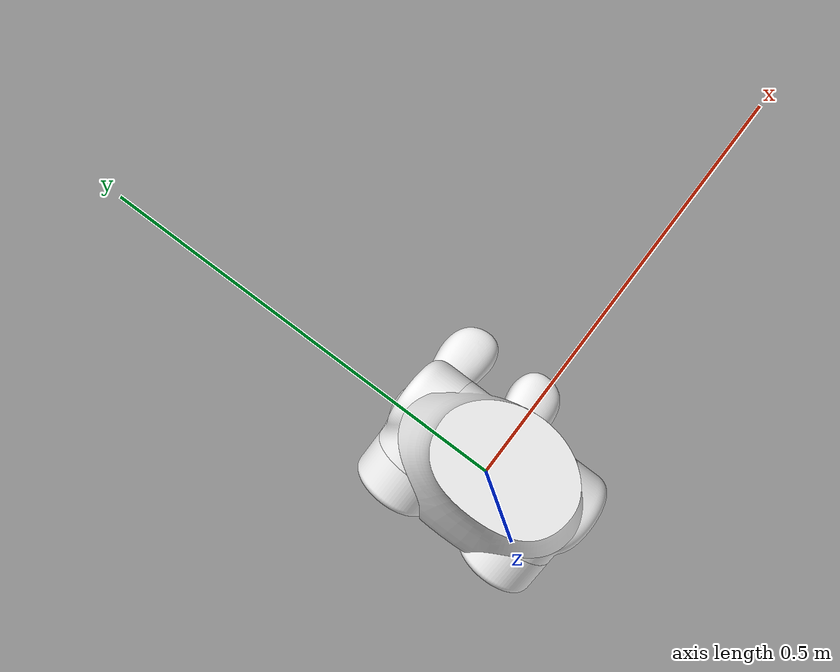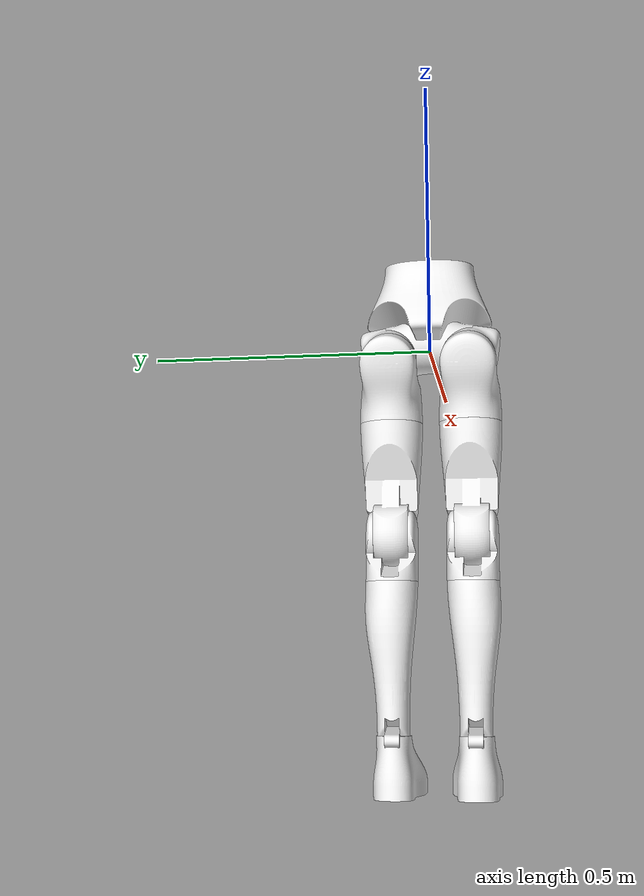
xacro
<?xml version="1.0"?>
<!-- GENERATED by robot_assets from Onshape CAD. Do not edit by hand. Regenerate: robot-assets-generate lite_biped -->
<robot xmlns:xacro="http://www.ros.org/wiki/xacro" name="lite_biped">
  <xacro:arg name="use_fake_hardware" default="true"/>
  <xacro:arg name="use_sim" default="false"/>
  <xacro:arg name="mode" default="legs"/>
  <xacro:arg name="can_interface_left" default="can2"/>
  <xacro:arg name="can_interface_right" default="can3"/>
  <xacro:arg name="calibration_file" default=""/>
  <xacro:arg name="imu_port" default="/dev/ttyUSB0"/>

  <xacro:include filename="$(find lite_description)/robots/lite_biped/xacro/lite_biped.description.xacro"/>
  <xacro:include filename="$(find lite_description)/robots/lite_biped/xacro/lite_biped.ros2_control.xacro"/>

  <xacro:lite_biped_description/>

  <xacro:lite_biped_ros2_control
    name="LiteBipedHardware"
    use_fake_hardware="$(arg use_fake_hardware)"
    use_sim="$(arg use_sim)"
    mode="$(arg mode)"
    can_interface_left="$(arg can_interface_left)"
    can_interface_right="$(arg can_interface_right)"
    calibration_file="$(arg calibration_file)"
    imu_port="$(arg imu_port)"/>
</robot>

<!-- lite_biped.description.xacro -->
<!-- GENERATED by robot_assets from Onshape CAD. Do not edit by hand. Regenerate: robot-assets-generate lite_biped -->
<robot xmlns:xacro="http://www.ros.org/wiki/xacro">
  <xacro:macro name="lite_biped_description" params="mesh_root:=package://lite_description/robots/lite_biped/meshes/visual">
    <link name="base_link" />
    <joint name="base_link_to_pelvis" type="fixed">
      <parent link="base_link" />
      <child link="pelvis" />
      <origin xyz="0 0 0" rpy="0 0 0" />
    </joint>
    <!-- GENERATED by robot_assets from Onshape CAD. Do not edit by hand. Regenerate: robot-assets-generate lite_biped -->
    <link name="pelvis">
      <inertial>
        <origin xyz="0.0137049 6.97587e-07 0.0692011" rpy="0 0 0" />
        <mass value="2.1" />
        <inertia ixx="0.00987937" ixy="3.9803e-08" ixz="-0.000115563" iyy="0.00823366" iyz="-5.1965e-08" izz="0.00638151" />
      </inertial>
      <!-- Part pelvis_parts -->
      <visual>
        <origin xyz="0.0137049 6.97587e-07 0.0692011" rpy="0 -0 0" />
        <geometry>
          <mesh filename="${mesh_root}/pelvis_visual.stl" />
        </geometry>
        <material name="pelvis_parts_material">
          <color rgba="0.933333 0.933333 0.933333 1" />
        </material>
      </visual>
    </link>
    <!-- Frame imu (dummy link + fixed joint) -->
    <link name="imu">
      <origin xyz="0 0 0" rpy="0 -0 0" />
      <inertial>
        <origin xyz="0 0 0" rpy="0 0 0" />
        <mass value="1e-9" />
        <inertia ixx="0" ixy="0" ixz="0" iyy="0" iyz="0" izz="0" />
      </inertial>
    </link>
    <joint name="imu_frame" type="fixed">
      <origin xyz="0 0 0.08" rpy="0 -0 0" />
      <parent link="pelvis" />
      <child link="imu" />
      <axis xyz="0 0 0" />
    </joint>
    <!-- Link left_hip_pitch -->
    <link name="left_hip_pitch">
      <inertial>
        <origin xyz="-0.0114774 0.00418673 0.0187959" rpy="0 0 0" />
        <mass value="0.18" />
        <inertia ixx="0.000189549" ixy="1.56103e-05" ixz="-3.45388e-05" iyy="0.000226363" iyz="1.30141e-05" izz="0.000286537" />
      </inertial>
      <!-- Part left_hip_pitch_parts -->
      <visual>
        <origin xyz="-0.0114774 0.00418673 0.0187959" rpy="1.74533 0 -0" />
        <geometry>
          <mesh filename="${mesh_root}/left_hip_pitch_visual.stl" />
        </geometry>
        <material name="left_hip_pitch_parts_material">
          <color rgba="0.933333 0.933333 0.933333 1" />
        </material>
      </visual>
    </link>
    <!-- Link left_hip_roll -->
    <link name="left_hip_roll">
      <inertial>
        <origin xyz="-4.8952e-08 0.0525082 -0.0652484" rpy="0 0 0" />
        <mass value="0.93" />
        <inertia ixx="0.00263146" ixy="-5.134e-09" ixz="3.451e-09" iyy="0.00142387" iyz="-0.000651416" izz="0.00255491" />
      </inertial>
      <!-- Part left_hip_roll_parts -->
      <collision>
        <origin xyz="0 0.181098 -0.0871979" rpy="1.22173 -0 0" />
        <geometry>
          <cylinder length="0.15" radius="0.05" />
        </geometry>
      </collision>
      <visual>
        <origin xyz="-4.8952e-08 0.0525082 -0.0652484" rpy="0 -1.22173 1.5708" />
        <geometry>
          <mesh filename="${mesh_root}/left_hip_roll_visual.stl" />
        </geometry>
        <material name="left_hip_roll_parts_material">
          <color rgba="0.933333 0.933333 0.933333 1" />
        </material>
      </visual>
    </link>
    <!-- Link left_hip_yaw -->
    <link name="left_hip_yaw">
      <inertial>
        <origin xyz="0.00130442 -2.2783e-05 -0.237299" rpy="0 0 0" />
        <mass value="1.54" />
        <inertia ixx="0.00856423" ixy="8.05553e-07" ixz="-0.000337563" iyy="0.00874707" iyz="1.62929e-07" izz="0.00192866" />
      </inertial>
      <!-- Part left_hip_yaw_parts -->
      <visual>
        <origin xyz="0.00130442 -2.2783e-05 -0.237299" rpy="-0 0 -0" />
        <geometry>
          <mesh filename="${mesh_root}/left_hip_yaw_visual.stl" />
        </geometry>
        <material name="left_hip_yaw_parts_material">
          <color rgba="0.933333 0.933333 0.933333 1" />
        </material>
      </visual>
    </link>
    <!-- Link left_knee_pitch -->
    <link name="left_knee_pitch">
      <inertial>
        <origin xyz="-0.00486713 0.0372163 -0.000224083" rpy="0 0 0" />
        <mass value="0.23" />
        <inertia ixx="0.00048246" ixy="3.51526e-05" ixz="-1.20098e-07" iyy="0.000330466" iyz="5.6617e-07" izz="0.00037756" />
      </inertial>
      <!-- Part left_knee_pitch_parts -->
      <collision>
        <origin xyz="-0.015 0.19 0" rpy="1.5708 1.5708 0" />
        <geometry>
          <cylinder length="0.12" radius="0.045" />
        </geometry>
      </collision>
      <visual>
        <origin xyz="-0.00486713 0.0372163 -0.000224083" rpy="1.5708 0 0" />
        <geometry>
          <mesh filename="${mesh_root}/left_knee_pitch_visual.stl" />
        </geometry>
        <material name="left_knee_pitch_parts_material">
          <color rgba="0.933333 0.933333 0.933333 1" />
        </material>
      </visual>
    </link>
    <!-- Link left_ankle_yaw -->
    <link name="left_ankle_yaw">
      <inertial>
        <origin xyz="-0.00304992 0.00150525 -0.18535" rpy="0 0 0" />
        <mass value="1.03" />
        <inertia ixx="0.00548966" ixy="2.18778e-06" ixz="0.000114943" iyy="0.00552969" iyz="-1.87643e-05" izz="0.000829513" />
      </inertial>
      <!-- Part left_ankle_yaw_parts -->
      <visual>
        <origin xyz="-0.00304992 0.00150525 -0.18535" rpy="-0 0 -0" />
        <geometry>
          <mesh filename="${mesh_root}/left_ankle_yaw_visual.stl" />
        </geometry>
        <material name="left_ankle_yaw_parts_material">
          <color rgba="0.933333 0.933333 0.933333 1" />
        </material>
      </visual>
    </link>
    <!-- Link left_ankle_pitch -->
    <link name="left_ankle_pitch">
      <inertial>
        <origin xyz="-0.00384209 0.0297371 3.1356e-08" rpy="0 0 0" />
        <mass value="0.34" />
        <inertia ixx="0.000180143" ixy="-3.10163e-05" ixz="-7.8e-11" iyy="0.00014325" iyz="2.66e-10" izz="0.000245142" />
      </inertial>
      <!-- Part left_ankle_pitch_parts -->
      <visual>
        <origin xyz="-0.00384209 0.0297371 3.1356e-08" rpy="1.5708 -0 -0" />
        <geometry>
          <mesh filename="${mesh_root}/left_ankle_pitch_visual.stl" />
        </geometry>
        <material name="left_ankle_pitch_parts_material">
          <color rgba="0.933333 0.933333 0.933333 1" />
        </material>
      </visual>
    </link>
    <!-- Link left_foot -->
    <link name="left_foot">
      <inertial>
        <origin xyz="0.00124938 0.0227876 0.0398042" rpy="0 0 0" />
        <mass value="0.44" />
        <inertia ixx="0.00133847" ixy="-3.31857e-06" ixz="-4.29633e-05" iyy="0.00119465" iyz="-0.000154848" izz="0.000481763" />
      </inertial>
      <!-- Part left_foot_parts -->
      <collision>
        <origin xyz="0 0.05 0.015" rpy="1.5708 0 0" />
        <geometry>
          <box size="0.065 0.12 0.03" />
        </geometry>
      </collision>
      <collision>
        <origin xyz="0 0.04 0.11" rpy="1.91986 0 0" />
        <geometry>
          <box size="0.07 0.05 0.03" />
        </geometry>
      </collision>
      <visual>
        <origin xyz="0.00124938 0.0227876 0.0398042" rpy="1.5708 -1.5708 0" />
        <geometry>
          <mesh filename="${mesh_root}/left_foot_visual.stl" />
        </geometry>
        <material name="left_foot_parts_material">
          <color rgba="0.933333 0.933333 0.933333 1" />
        </material>
      </visual>
    </link>
    <!-- Joint from left_ankle_pitch to left_foot -->
    <joint name="left_ankle_roll" type="revolute">
      <origin xyz="-0 0.04 0" rpy="0 1.5708 0" />
      <parent link="left_ankle_pitch" />
      <child link="left_foot" />
      <axis xyz="0 0 1" />
      <limit effort="5.5" velocity="100" lower="-0.349066" upper="0.349066" />
      <joint_properties friction="0.1" />
    </joint>
    <!-- Joint from left_ankle_yaw to left_ankle_pitch -->
    <joint name="left_ankle_pitch" type="revolute">
      <origin xyz="0.01 -0 -0.34" rpy="-1.5708 0 -0" />
      <parent link="left_ankle_yaw" />
      <child link="left_ankle_pitch" />
      <axis xyz="0 0 1" />
      <limit effort="14.0" velocity="100" lower="-0.523599" upper="0.872665" />
      <joint_properties friction="0.1" />
    </joint>
    <!-- Joint from left_knee_pitch to left_ankle_yaw -->
    <joint name="left_ankle_yaw" type="revolute">
      <origin xyz="-0.015 0 0" rpy="1.5708 0 -0" />
      <parent link="left_knee_pitch" />
      <child link="left_ankle_yaw" />
      <axis xyz="0 0 1" />
      <limit effort="14.0" velocity="100" lower="-1.5708" upper="1.5708" />
      <joint_properties friction="0.1" />
    </joint>
    <!-- Joint from left_hip_yaw to left_knee_pitch -->
    <joint name="left_knee_pitch" type="revolute">
      <origin xyz="-0.01 0 -0.33" rpy="-1.5708 0 0" />
      <parent link="left_hip_yaw" />
      <child link="left_knee_pitch" />
      <axis xyz="0 0 1" />
      <limit effort="36.0" velocity="100" lower="0" upper="2.35619" />
      <joint_properties friction="0.1" />
    </joint>
    <!-- Joint from left_hip_roll to left_hip_yaw -->
    <joint name="left_hip_yaw" type="revolute">
      <origin xyz="0 -0.0068404 -0.0187939" rpy="0 -1.22173 1.5708" />
      <parent link="left_hip_roll" />
      <child link="left_hip_yaw" />
      <axis xyz="0 0 1" />
      <limit effort="17.0" velocity="100" lower="-1.5708" upper="1.5708" />
      <joint_properties friction="0.1" />
    </joint>
    <!-- Joint from left_hip_pitch to left_hip_roll -->
    <joint name="left_hip_roll" type="revolute">
      <origin xyz="-0 0 -0" rpy="1.91986 1.39626 1.5708" />
      <parent link="left_hip_pitch" />
      <child link="left_hip_roll" />
      <axis xyz="0 0 1" />
      <limit effort="36.0" velocity="100" lower="-0.349066" upper="1.5708" />
      <joint_properties friction="0.1" />
    </joint>
    <!-- Joint from pelvis to left_hip_pitch -->
    <joint name="left_hip_pitch" type="revolute">
      <origin xyz="0.02 0.07 0" rpy="-1.74533 0 0" />
      <parent link="pelvis" />
      <child link="left_hip_pitch" />
      <axis xyz="0 0 1" />
      <limit effort="36.0" velocity="100" lower="-2.35619" upper="0.785398" />
      <joint_properties friction="0.1" />
    </joint>
    <!-- Link right_hip_pitch -->
    <link name="right_hip_pitch">
      <inertial>
        <origin xyz="-0.0114771 0.00418737 -0.0187964" rpy="0 0 0" />
        <mass value="0.18" />
        <inertia ixx="0.000189546" ixy="1.56176e-05" ixz="3.45408e-05" iyy="0.00022637" iyz="-1.30122e-05" izz="0.000286535" />
      </inertial>
      <!-- Part right_hip_pitch_parts -->
      <visual>
        <origin xyz="-0.0114771 0.00418737 -0.0187964" rpy="1.39626 0 -0" />
        <geometry>
          <mesh filename="${mesh_root}/right_hip_pitch_visual.stl" />
        </geometry>
        <material name="right_hip_pitch_parts_material">
          <color rgba="0.933333 0.933333 0.933333 1" />
        </material>
      </visual>
    </link>
    <!-- Link right_hip_roll -->
    <link name="right_hip_roll">
      <inertial>
        <origin xyz="-1.13349e-07 0.0525083 -0.0652488" rpy="0 0 0" />
        <mass value="0.93" />
        <inertia ixx="0.00263147" ixy="2.71e-10" ixz="6.079e-09" iyy="0.00142387" iyz="-0.000651423" izz="0.00255493" />
      </inertial>
      <!-- Part right_hip_roll_parts -->
      <collision>
        <origin xyz="-0 0.181098 -0.0871979" rpy="1.22173 0 0" />
        <geometry>
          <cylinder length="0.15" radius="0.05" />
        </geometry>
      </collision>
      <visual>
        <origin xyz="-1.13349e-07 0.0525083 -0.0652488" rpy="0 -1.22173 1.5708" />
        <geometry>
          <mesh filename="${mesh_root}/right_hip_roll_visual.stl" />
        </geometry>
        <material name="right_hip_roll_parts_material">
          <color rgba="0.933333 0.933333 0.933333 1" />
        </material>
      </visual>
    </link>
    <!-- Link right_hip_yaw -->
    <link name="right_hip_yaw">
      <inertial>
        <origin xyz="0.00130421 2.35733e-05 -0.237299" rpy="0 0 0" />
        <mass value="1.54" />
        <inertia ixx="0.00856421" ixy="-7.98006e-07" ixz="-0.000337552" iyy="0.00874705" iyz="-2.23692e-07" izz="0.00192867" />
      </inertial>
      <!-- Part right_hip_yaw_parts -->
      <visual>
        <origin xyz="0.00130421 2.35733e-05 -0.237299" rpy="0 0 0" />
        <geometry>
          <mesh filename="${mesh_root}/right_hip_yaw_visual.stl" />
        </geometry>
        <material name="right_hip_yaw_parts_material">
          <color rgba="0.933333 0.933333 0.933333 1" />
        </material>
      </visual>
    </link>
    <!-- Link right_knee_pitch -->
    <link name="right_knee_pitch">
      <inertial>
        <origin xyz="-0.0048642 0.0372186 0.000224747" rpy="0 0 0" />
        <mass value="0.23" />
        <inertia ixx="0.000482479" ixy="3.5171e-05" ixz="1.13103e-07" iyy="0.000330463" iyz="-5.54061e-07" izz="0.000377561" />
      </inertial>
      <!-- Part right_knee_pitch_parts -->
      <collision>
        <origin xyz="-0.015 0.19 0" rpy="1.5708 1.5708 0" />
        <geometry>
          <cylinder length="0.12" radius="0.045" />
        </geometry>
      </collision>
      <visual>
        <origin xyz="-0.0048642 0.0372186 0.000224747" rpy="1.5708 -0 0" />
        <geometry>
          <mesh filename="${mesh_root}/right_knee_pitch_visual.stl" />
        </geometry>
        <material name="right_knee_pitch_parts_material">
          <color rgba="0.933333 0.933333 0.933333 1" />
        </material>
      </visual>
    </link>
    <!-- Link right_ankle_yaw -->
    <link name="right_ankle_yaw">
      <inertial>
        <origin xyz="-0.00304908 -0.0015054 -0.185348" rpy="0 0 0" />
        <mass value="1.03" />
        <inertia ixx="0.00548969" ixy="-2.19478e-06" ixz="0.000114953" iyy="0.00552968" iyz="1.87697e-05" izz="0.00082951" />
      </inertial>
      <!-- Part right_ankle_yaw_parts -->
      <visual>
        <origin xyz="-0.00304908 -0.0015054 -0.185348" rpy="0 0 0" />
        <geometry>
          <mesh filename="${mesh_root}/right_ankle_yaw_visual.stl" />
        </geometry>
        <material name="right_ankle_yaw_parts_material">
          <color rgba="0.933333 0.933333 0.933333 1" />
        </material>
      </visual>
    </link>
    <!-- Link right_ankle_pitch -->
    <link name="right_ankle_pitch">
      <inertial>
        <origin xyz="-0.00384209 0.0297371 3.1396e-08" rpy="0 0 0" />
        <mass value="0.34" />
        <inertia ixx="0.000180143" ixy="-3.10163e-05" ixz="-7.8e-11" iyy="0.00014325" iyz="2.66e-10" izz="0.000245142" />
      </inertial>
      <!-- Part right_ankle_pitch_parts -->
      <visual>
        <origin xyz="-0.00384209 0.0297371 3.1396e-08" rpy="1.5708 -0 0" />
        <geometry>
          <mesh filename="${mesh_root}/right_ankle_pitch_visual.stl" />
        </geometry>
        <material name="right_ankle_pitch_parts_material">
          <color rgba="0.933333 0.933333 0.933333 1" />
        </material>
      </visual>
    </link>
    <!-- Link right_foot -->
    <link name="right_foot">
      <inertial>
        <origin xyz="-0.0012494 0.0227876 0.039804" rpy="0 0 0" />
        <mass value="0.44" />
        <inertia ixx="0.00133847" ixy="3.3182e-06" ixz="4.29635e-05" iyy="0.00119465" iyz="-0.000154847" izz="0.000481763" />
      </inertial>
      <!-- Part right_foot_parts -->
      <collision>
        <origin xyz="0 0.05 0.015" rpy="1.5708 0 -0" />
        <geometry>
          <box size="0.065 0.12 0.03" />
        </geometry>
      </collision>
      <collision>
        <origin xyz="0 0.04 0.11" rpy="1.91986 0 -0" />
        <geometry>
          <box size="0.07 0.05 0.03" />
        </geometry>
      </collision>
      <visual>
        <origin xyz="-0.0012494 0.0227876 0.039804" rpy="1.5708 -1.5708 0" />
        <geometry>
          <mesh filename="${mesh_root}/right_foot_visual.stl" />
        </geometry>
        <material name="right_foot_parts_material">
          <color rgba="0.933333 0.933333 0.933333 1" />
        </material>
      </visual>
    </link>
    <!-- Joint from right_ankle_pitch to right_foot -->
    <joint name="right_ankle_roll" type="revolute">
      <origin xyz="-0 0.04 -0" rpy="-0 1.5708 0" />
      <parent link="right_ankle_pitch" />
      <child link="right_foot" />
      <axis xyz="0 0 1" />
      <limit effort="5.5" velocity="100" lower="-0.349066" upper="0.349066" />
      <joint_properties friction="0.1" />
    </joint>
    <!-- Joint from right_ankle_yaw to right_ankle_pitch -->
    <joint name="right_ankle_pitch" type="revolute">
      <origin xyz="0.01 0 -0.34" rpy="-1.5708 0 0" />
      <parent link="right_ankle_yaw" />
      <child link="right_ankle_pitch" />
      <axis xyz="0 0 1" />
      <limit effort="14.0" velocity="100" lower="-0.523599" upper="0.872665" />
      <joint_properties friction="0.1" />
    </joint>
    <!-- Joint from right_knee_pitch to right_ankle_yaw -->
    <joint name="right_ankle_yaw" type="revolute">
      <origin xyz="-0.015 0 -0" rpy="1.5708 -0 -0" />
      <parent link="right_knee_pitch" />
      <child link="right_ankle_yaw" />
      <axis xyz="0 0 1" />
      <limit effort="14.0" velocity="100" lower="-1.5708" upper="1.5708" />
      <joint_properties friction="0.1" />
    </joint>
    <!-- Joint from right_hip_yaw to right_knee_pitch -->
    <joint name="right_knee_pitch" type="revolute">
      <origin xyz="-0.01 -0 -0.33" rpy="-1.5708 0 0" />
      <parent link="right_hip_yaw" />
      <child link="right_knee_pitch" />
      <axis xyz="0 0 1" />
      <limit effort="36.0" velocity="100" lower="0" upper="2.35619" />
      <joint_properties friction="0.1" />
    </joint>
    <!-- Joint from right_hip_roll to right_hip_yaw -->
    <joint name="right_hip_yaw" type="revolute">
      <origin xyz="-0 -0.0068404 -0.0187939" rpy="0 -1.22173 1.5708" />
      <parent link="right_hip_roll" />
      <child link="right_hip_yaw" />
      <axis xyz="0 0 1" />
      <limit effort="17.0" velocity="100" lower="-1.5708" upper="1.5708" />
      <joint_properties friction="0.1" />
    </joint>
    <!-- Joint from right_hip_pitch to right_hip_roll -->
    <joint name="right_hip_roll" type="revolute">
      <origin xyz="0 -0 -0" rpy="-1.22173 1.39626 -1.5708" />
      <parent link="right_hip_pitch" />
      <child link="right_hip_roll" />
      <axis xyz="0 0 1" />
      <limit effort="36.0" velocity="100" lower="-1.5708" upper="0.349066" />
      <joint_properties friction="0.1" />
    </joint>
    <!-- Joint from pelvis to right_hip_pitch -->
    <joint name="right_hip_pitch" type="revolute">
      <origin xyz="0.02 -0.07 -0" rpy="-1.39626 -0 0" />
      <parent link="pelvis" />
      <child link="right_hip_pitch" />
      <axis xyz="0 0 1" />
      <limit effort="36.0" velocity="100" lower="-2.35619" upper="0.785398" />
      <joint_properties friction="0.1" />
    </joint>
  </xacro:macro>
</robot>
